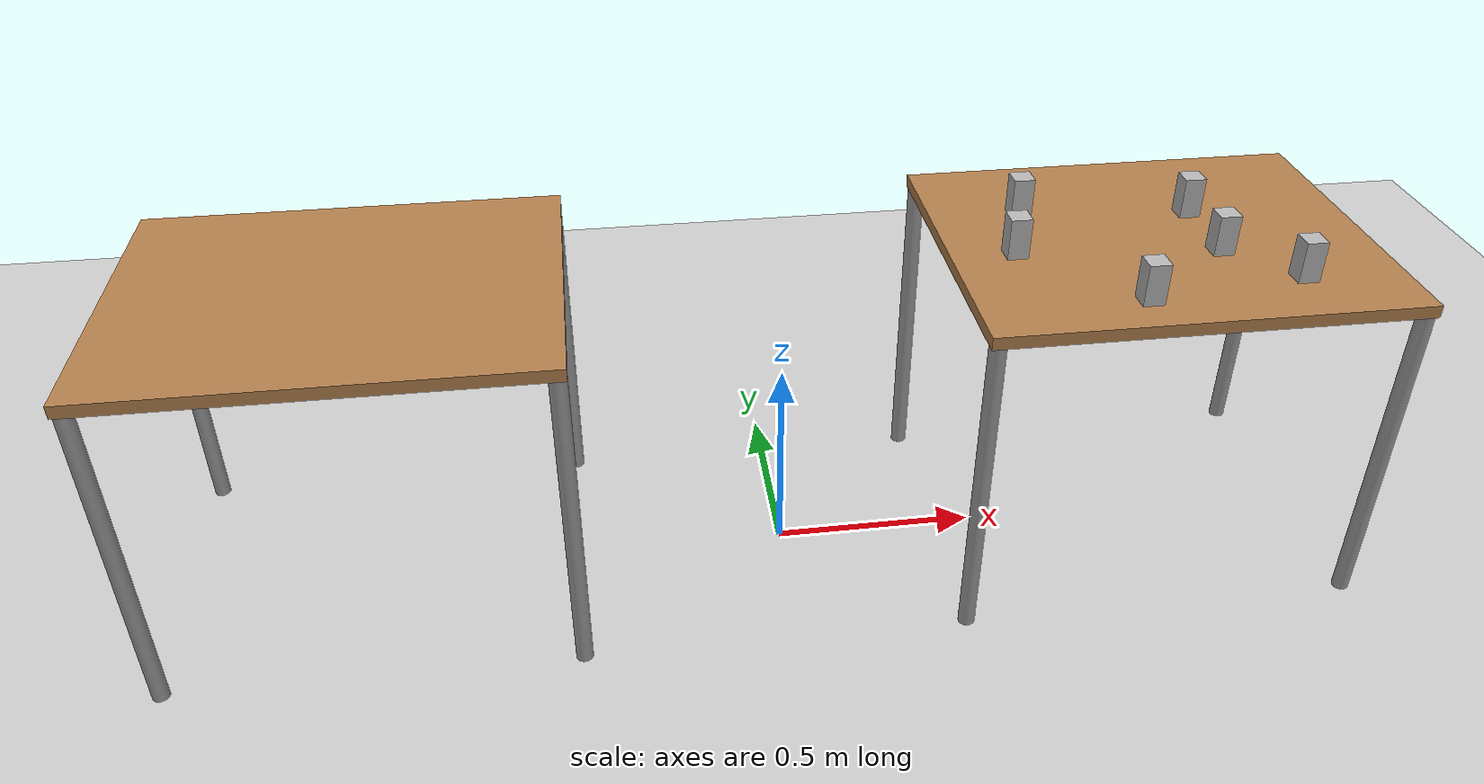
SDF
<sdf version="1.4">
 <world name="default">
  <physics type="ode">
   <gravity>0 0 -9.81</gravity>
   <ode>
    <solver><type>quick</type><iters>20</iters><sor>1</sor></solver>
    <constraints>
     <cfm>0</cfm>
     <erp>0.2</erp>
     <contact_max_correcting_vel>100</contact_max_correcting_vel>
     <contact_surface_layer>0</contact_surface_layer>
    </constraints>
   </ode>
   <real_time_update_rate>1000</real_time_update_rate>
   <max_step_size>0.001</max_step_size>
   <real_time_factor>1</real_time_factor>
  </physics>
  <light name="light1" type="directional">
   <pose>-2 0 4 0 -0 0</pose>
   <diffuse>1 1 1 1</diffuse>
   <specular>0.1 0.1 0.1 1</specular>
   <attenuation>
    <range>20</range>
    <constant>0.9</constant>
    <linear>0.01</linear>
    <quadratic>0.001</quadratic>
   </attenuation>
   <direction>0.2 0 -1</direction>
  </light>
  <model name="ground_plane">
   <static>1</static>
   <link name="link">
    <collision name="collision">
     <geometry><plane><normal>0 0 1</normal><size>100 100</size></plane></geometry>
     <surface><friction><ode><mu>100</mu><mu2>50</mu2></ode></friction></surface>
    </collision>
    <visual name="visual">
     <cast_shadows>0</cast_shadows>
     <geometry><plane><normal>0 0 1</normal><size>100 100</size></plane></geometry>
     <material>
      <script><uri>file://media/materials/scripts/gazebo.material</uri><name>Gazebo/Grey</name></script>
     </material>
    </visual>
    <velocity_decay><linear>0</linear><angular>0</angular></velocity_decay>
   </link>
  </model>
  <model name="table1">
   <static>1</static>
   <link name="link">
    <collision name="surface">
     <pose>0 0 0.8 0 -0 0</pose>
     <geometry><box><size>1 0.8 0.03</size></box></geometry>
    </collision>
    <visual name="visual1">
     <pose>0 0 0.8 0 -0 0</pose>
     <geometry><box><size>1 0.8 0.03</size></box></geometry>
     <material>
      <script><uri>file://media/materials/scripts/gazebo.material</uri><name>Gazebo/Wood</name></script>
     </material>
    </visual>
    <collision name="front_left_leg">
     <pose>0.48 0.38 0.4 0 -0 0</pose>
     <geometry><cylinder><radius>0.02</radius><length>0.8</length></cylinder></geometry>
    </collision>
    <visual name="front_left_leg">
     <pose>0.48 0.38 0.4 0 -0 0</pose>
     <geometry><cylinder><radius>0.02</radius><length>0.8</length></cylinder></geometry>
     <material>
      <script><uri>file://media/materials/scripts/gazebo.material</uri><name>Gazebo/Grey</name></script>
     </material>
    </visual>
    <collision name="front_right_leg">
     <pose>0.48 -0.38 0.4 0 -0 0</pose>
     <geometry><cylinder><radius>0.02</radius><length>0.8</length></cylinder></geometry>
    </collision>
    <visual name="front_right_leg">
     <pose>0.48 -0.38 0.4 0 -0 0</pose>
     <geometry><cylinder><radius>0.02</radius><length>0.8</length></cylinder></geometry>
     <material>
      <script><uri>file://media/materials/scripts/gazebo.material</uri><name>Gazebo/Grey</name></script>
     </material>
    </visual>
    <collision name="back_right_leg">
     <pose>-0.48 -0.38 0.4 0 -0 0</pose>
     <geometry><cylinder><radius>0.02</radius><length>0.8</length></cylinder></geometry>
    </collision>
    <visual name="back_right_leg">
     <pose>-0.48 -0.38 0.4 0 -0 0</pose>
     <geometry><cylinder><radius>0.02</radius><length>0.8</length></cylinder></geometry>
     <material>
      <script><uri>file://media/materials/scripts/gazebo.material</uri><name>Gazebo/Grey</name></script>
     </material>
    </visual>
    <collision name="back_left_leg">
     <pose>-0.48 0.38 0.4 0 -0 0</pose>
     <geometry><cylinder><radius>0.02</radius><length>0.8</length></cylinder></geometry>
    </collision>
    <visual name="back_left_leg">
     <pose>-0.48 0.38 0.4 0 -0 0</pose>
     <geometry><cylinder><radius>0.02</radius><length>0.8</length></cylinder></geometry>
     <material>
      <script><uri>file://media/materials/scripts/gazebo.material</uri><name>Gazebo/Grey</name></script>
     </material>
    </visual>
    <velocity_decay><linear>0</linear><angular>0</angular></velocity_decay>
   </link>
   <pose>0.88 0 0 0 -0 0</pose>
  </model>
  <model name="aruco_cube1">
   <static>0</static>
   <link name="link">
    <inertial>
     <mass>0.05</mass>
     <inertia>
      <ixx>5.2083e-05</ixx>
      <ixy>0</ixy>
      <ixz>0</ixz>
      <iyy>5.2083e-05</iyy>
      <iyz>0</iyz>
      <izz>2.0833e-05</izz>
     </inertia>
    </inertial>
    <collision name="colision">
     <geometry><box><size>0.05 0.05 0.1</size></box></geometry>
     <surface>
      <friction><ode><mu>30</mu><mu2>30</mu2><fdir1>0 0 0</fdir1></ode></friction>
      <contact><ode><kp>1e+06</kp><kd>100</kd><min_depth>0.0025</min_depth><max_vel>1</max_vel></ode></contact>
     </surface>
    </collision>
    <visual name="visual1">
     <geometry><mesh><uri>model://aruco_cube/meshes/aruco_cube_5cm.dae</uri><scale>1 1 2</scale></mesh></geometry>
    </visual>
    <velocity_decay><linear>0</linear><angular>0</angular></velocity_decay>
   </link>
   <pose>0.530054 -0.049825 0.863733 -0.003495 0.001081 -2e-06</pose>
  </model>
  <scene><ambient>0.4 0.4 0.4 1</ambient><background>0.7 0.7 0.7 1</background><shadows>1</shadows></scene>
  <spherical_coordinates>
   <surface_model>EARTH_WGS84</surface_model>
   <latitude_deg>0</latitude_deg>
   <longitude_deg>0</longitude_deg>
   <elevation>0</elevation>
   <heading_deg>0</heading_deg>
  </spherical_coordinates>
  <model name="aruco_cube2">
   <static>0</static>
   <link name="link">
    <inertial>
     <mass>0.05</mass>
     <inertia>
      <ixx>5.2083e-05</ixx>
      <ixy>0</ixy>
      <ixz>0</ixz>
      <iyy>5.2083e-05</iyy>
      <iyz>0</iyz>
      <izz>2.0833e-05</izz>
     </inertia>
    </inertial>
    <collision name="colision">
     <geometry><box><size>0.05 0.05 0.1</size></box></geometry>
     <surface>
      <friction><ode><mu>30</mu><mu2>30</mu2><fdir1>0 0 0</fdir1></ode></friction>
      <contact><ode><kp>1e+06</kp><kd>100</kd><min_depth>0.0025</min_depth><max_vel>1</max_vel></ode></contact>
     </surface>
    </collision>
    <visual name="visual1">
     <geometry><mesh><uri>model://aruco_cube2/meshes/aruco_cube_5cm.dae</uri><scale>1 1 2</scale></mesh></geometry>
    </visual>
    <velocity_decay><linear>0</linear><angular>0</angular></velocity_decay>
   </link>
   <pose>1.13777 -0.240719 0.863052 -0.006021 0.001855 0.003148</pose>
  </model>
  <model name="aruco_cube3">
   <static>0</static>
   <link name="link">
    <inertial>
     <mass>0.05</mass>
     <inertia>
      <ixx>5.2083e-05</ixx>
      <ixy>0</ixy>
      <ixz>0</ixz>
      <iyy>5.2083e-05</iyy>
      <iyz>0</iyz>
      <izz>2.0833e-05</izz>
     </inertia>
    </inertial>
    <collision name="colision">
     <geometry><box><size>0.05 0.05 0.1</size></box></geometry>
     <surface>
      <friction><ode><mu>30</mu><mu2>30</mu2><fdir1>0 0 0</fdir1></ode></friction>
      <contact><ode><kp>1e+06</kp><kd>100</kd><min_depth>0.0025</min_depth><max_vel>1</max_vel></ode></contact>
     </surface>
    </collision>
    <visual name="visual1">
     <geometry><mesh><uri>model://aruco_cube3/meshes/aruco_cube_5cm.dae</uri><scale>1 1 2</scale></mesh></geometry>
    </visual>
    <velocity_decay><linear>0</linear><angular>0</angular></velocity_decay>
   </link>
   <pose>1.00317 -0.095623 0.863025 -0.005903 0.00185 -3e-06</pose>
  </model>
  <model name="aruco_cube4">
   <static>0</static>
   <link name="link">
    <inertial>
     <mass>0.05</mass>
     <inertia>
      <ixx>5.2083e-05</ixx>
      <ixy>0</ixy>
      <ixz>0</ixz>
      <iyy>5.2083e-05</iyy>
      <iyz>0</iyz>
      <izz>2.0833e-05</izz>
     </inertia>
    </inertial>
    <collision name="colision">
     <geometry><box><size>0.05 0.05 0.1</size></box></geometry>
     <surface>
      <friction><ode><mu>30</mu><mu2>30</mu2><fdir1>0 0 0</fdir1></ode></friction>
      <contact><ode><kp>1e+06</kp><kd>100</kd><min_depth>0.0025</min_depth><max_vel>1</max_vel></ode></contact>
     </surface>
    </collision>
    <visual name="visual1">
     <geometry><mesh><uri>model://aruco_cube4/meshes/aruco_cube_5cm.dae</uri><scale>1 1 2</scale></mesh></geometry>
    </visual>
    <velocity_decay><linear>0</linear><angular>0</angular></velocity_decay>
   </link>
   <pose>0.999987 0.099894 0.863395 -0.004107 0.001274 9.1e-05</pose>
  </model>
  <model name="aruco_cube5">
   <static>0</static>
   <link name="link">
    <inertial>
     <mass>0.05</mass>
     <inertia>
      <ixx>5.2083e-05</ixx>
      <ixy>0</ixy>
      <ixz>0</ixz>
      <iyy>5.2083e-05</iyy>
      <iyz>0</iyz>
      <izz>2.0833e-05</izz>
     </inertia>
    </inertial>
    <collision name="colision">
     <geometry><box><size>0.05 0.05 0.1</size></box></geometry>
     <surface>
      <friction><ode><mu>30</mu><mu2>30</mu2><fdir1>0 0 0</fdir1></ode></friction>
      <contact><ode><kp>1e+06</kp><kd>100</kd><min_depth>0.0025</min_depth><max_vel>1</max_vel></ode></contact>
     </surface>
    </collision>
    <visual name="visual1">
     <geometry><mesh><uri>model://aruco_cube5/meshes/aruco_cube_5cm.dae</uri><scale>1 1 2</scale></mesh></geometry>
    </visual>
    <velocity_decay><linear>0</linear><angular>0</angular></velocity_decay>
   </link>
   <pose>0.760469 -0.292491 0.863409 -0.004042 0.001253 -2e-06</pose>
  </model>
  <model name="aruco_cube6">
   <static>0</static>
   <link name="link">
    <inertial>
     <mass>0.05</mass>
     <inertia>
      <ixx>5.2083e-05</ixx>
      <ixy>0</ixy>
      <ixz>0</ixz>
      <iyy>5.2083e-05</iyy>
      <iyz>0</iyz>
      <izz>2.0833e-05</izz>
     </inertia>
    </inertial>
    <collision name="colision">
     <geometry><box><size>0.05 0.05 0.1</size></box></geometry>
     <surface>
      <friction><ode><mu>30</mu><mu2>30</mu2><fdir1>0 0 0</fdir1></ode></friction>
      <contact><ode><kp>1e+06</kp><kd>100</kd><min_depth>0.0025</min_depth><max_vel>1</max_vel></ode></contact>
     </surface>
    </collision>
    <visual name="visual1">
     <geometry><mesh><uri>model://aruco_cube5/meshes/aruco_cube_5cm.dae</uri><scale>1 1 2</scale></mesh></geometry>
    </visual>
    <velocity_decay><linear>0</linear><angular>0</angular></velocity_decay>
   </link>
   <pose>0.596128 0.149046 0.863718 -0.004042 0.001253 -2e-06</pose>
  </model>
  <model name="table">
   <static>1</static>
   <link name="link">
    <collision name="surface">
     <pose>0 0 0.8 0 -0 0</pose>
     <geometry><box><size>1 0.8 0.03</size></box></geometry>
    </collision>
    <visual name="visual1">
     <pose>0 0 0.8 0 -0 0</pose>
     <geometry><box><size>1 0.8 0.03</size></box></geometry>
     <material>
      <script><uri>file://media/materials/scripts/gazebo.material</uri><name>Gazebo/Wood</name></script>
     </material>
    </visual>
    <collision name="front_left_leg">
     <pose>0.48 0.38 0.4 0 -0 0</pose>
     <geometry><cylinder><radius>0.02</radius><length>0.8</length></cylinder></geometry>
    </collision>
    <visual name="front_left_leg">
     <pose>0.48 0.38 0.4 0 -0 0</pose>
     <geometry><cylinder><radius>0.02</radius><length>0.8</length></cylinder></geometry>
     <material>
      <script><uri>file://media/materials/scripts/gazebo.material</uri><name>Gazebo/Grey</name></script>
     </material>
    </visual>
    <collision name="front_right_leg">
     <pose>0.48 -0.38 0.4 0 -0 0</pose>
     <geometry><cylinder><radius>0.02</radius><length>0.8</length></cylinder></geometry>
    </collision>
    <visual name="front_right_leg">
     <pose>0.48 -0.38 0.4 0 -0 0</pose>
     <geometry><cylinder><radius>0.02</radius><length>0.8</length></cylinder></geometry>
     <material>
      <script><uri>file://media/materials/scripts/gazebo.material</uri><name>Gazebo/Grey</name></script>
     </material>
    </visual>
    <collision name="back_right_leg">
     <pose>-0.48 -0.38 0.4 0 -0 0</pose>
     <geometry><cylinder><radius>0.02</radius><length>0.8</length></cylinder></geometry>
    </collision>
    <visual name="back_right_leg">
     <pose>-0.48 -0.38 0.4 0 -0 0</pose>
     <geometry><cylinder><radius>0.02</radius><length>0.8</length></cylinder></geometry>
     <material>
      <script><uri>file://media/materials/scripts/gazebo.material</uri><name>Gazebo/Grey</name></script>
     </material>
    </visual>
    <collision name="back_left_leg">
     <pose>-0.48 0.38 0.4 0 -0 0</pose>
     <geometry><cylinder><radius>0.02</radius><length>0.8</length></cylinder></geometry>
    </collision>
    <visual name="back_left_leg">
     <pose>-0.48 0.38 0.4 0 -0 0</pose>
     <geometry><cylinder><radius>0.02</radius><length>0.8</length></cylinder></geometry>
     <material>
      <script><uri>file://media/materials/scripts/gazebo.material</uri><name>Gazebo/Grey</name></script>
     </material>
    </visual>
    <velocity_decay><linear>0</linear><angular>0</angular></velocity_decay>
   </link>
   <pose>-1 0 0 0 -0 0</pose>
  </model>
 </world>
</sdf>
